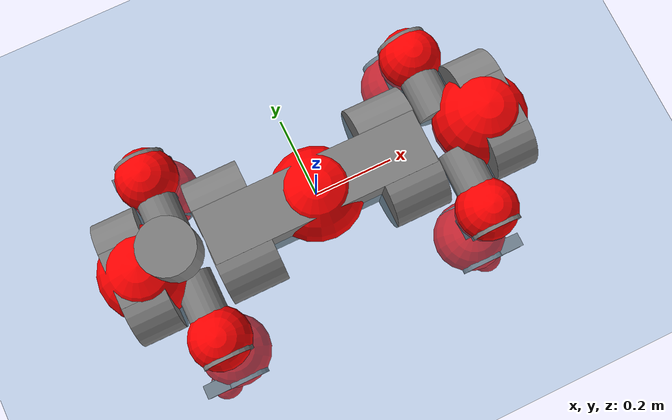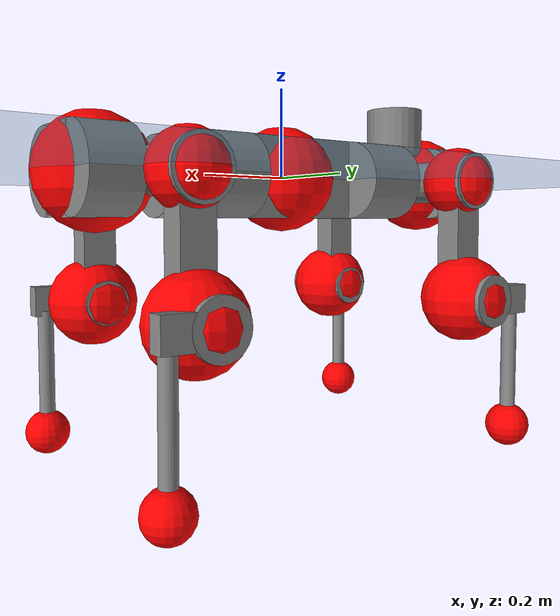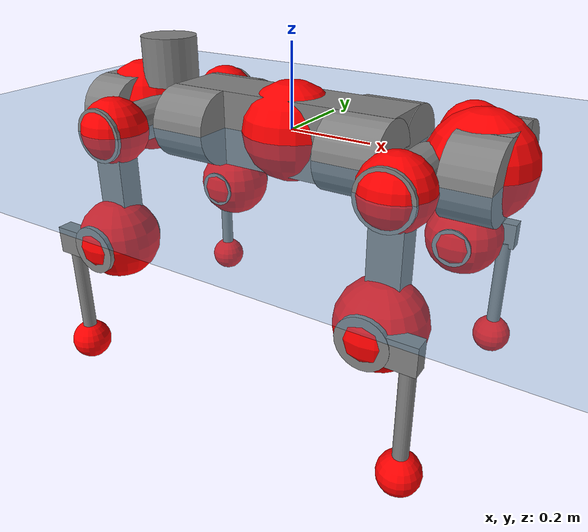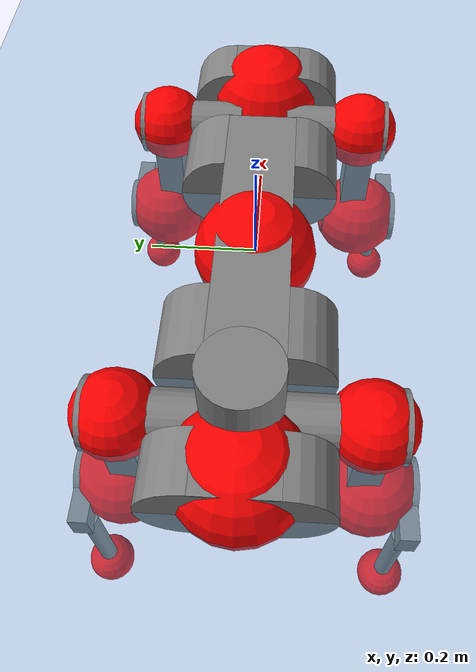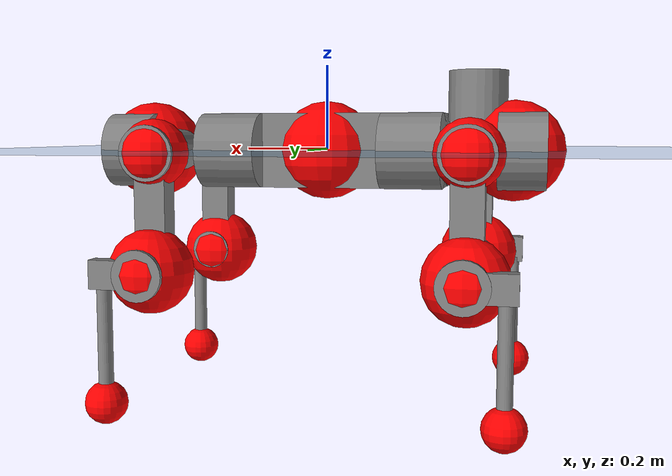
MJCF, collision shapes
<mujoco model="anymal_c">
  <compiler angle="radian" assetdir="assets" balanceinertia="true" inertiafromgeom="false"/>

  <option timestep="0.005" density="1.2" viscosity="2e-05"/>

  <size nkey="1"/>

  <visual>
    <quality shadowsize="8192"/>
    <map shadowclip="0.5"/>
  </visual>

  <default>
    <default class="/">
      <material specular="0" shininess="0.25"/>
      <geom contype="0" conaffinity="0" group="1" solref="-1000 -80"/>
      <site size="0.01 0.005 0.005" group="5"/>
      <general forcelimited="true" forcerange="-80 80" biastype="affine" gainprm="80" biasprm="0 -80 -2"/>
      <default class="anymal_c">
        <joint armature="0.01" damping="0.01" frictionloss="0.1"/>
        <default class="visual">
          <geom type="mesh" group="2"/>
          <default class="visual_zflip"/>
        </default>
        <default class="collision">
          <geom type="cylinder" group="3"/>
          <default class="foot">
            <geom size="0.03 0 0" type="sphere" condim="6" priority="1" friction="0.8 0.02 0.01" solimp="0.015 1 0.03"/>
          </default>
        </default>
      </default>
      <default class="reward_collision_sphere">
        <geom group="5" rgba="1 0 0 1"/>
      </default>
    </default>
  </default>

  <asset>
    <texture type="skybox" colorspace="auto" name="//unnamed_texture_0" builtin="gradient" rgb1="0.95 0.95 0.95" rgb2="0.95 0.95 0.95" width="100" height="600"/>
    <texture type="2d" colorspace="auto" name="texplane" builtin="checker" rgb1="0.345 0.575 0.748" rgb2="0.345 0.575 0.748" markrgb="1 1 1" width="512" height="512"/>
    <texture type="2d" colorspace="linear" name="base" file="base.png"/>
    <texture type="2d" colorspace="linear" name="top_shell" file="top_shell.png"/>
    <texture type="2d" colorspace="linear" name="bottom_shell" file="bottom_shell.png"/>
    <texture type="2d" colorspace="linear" name="remote" file="remote.png"/>
    <texture type="2d" colorspace="linear" name="hatch" file="hatch.png"/>
    <texture type="2d" colorspace="linear" name="handle" file="handle.png"/>
    <texture type="2d" colorspace="linear" name="face" file="face.png"/>
    <texture type="2d" colorspace="linear" name="battery" file="battery.png"/>
    <texture type="2d" colorspace="linear" name="lidar_cage" file="lidar_cage.png"/>
    <texture type="2d" colorspace="linear" name="depth_camera" file="depth_camera.png"/>
    <texture type="2d" colorspace="linear" name="wide_angle_camera" file="wide_angle_camera.png"/>
    <texture type="2d" colorspace="linear" name="lidar" file="lidar.png"/>
    <texture type="2d" colorspace="linear" name="drive" file="drive.png"/>
    <texture type="2d" colorspace="linear" name="hip_l" file="hip_l.png"/>
    <texture type="2d" colorspace="linear" name="shank_l" file="shank_l.png"/>
    <texture type="2d" colorspace="linear" name="foot" file="foot.png"/>
    <texture type="2d" colorspace="linear" name="thigh" file="thigh.png"/>
    <texture type="2d" colorspace="linear" name="shank_r" file="shank_r.png"/>
    <texture type="2d" colorspace="linear" name="hip_r" file="hip_r.png"/>
    <material name="MatPlane" class="/" texture="texplane" texuniform="true" texrepeat="2 2" specular="0.9" shininess="0.5"/>
    <material name="black_plastic" class="/" rgba="0.007 0.007 0.007 1"/>
    <material name="green" class="/" rgba="0.052 0.178 0.033 1"/>
    <material name="red" class="/" rgba="0.178 0.006 0.005 1"/>
    <material name="yellow" class="/" rgba="0.178 0.119 0.006 1"/>
    <material name="lwl" class="/" rgba="0.8 0.8 0.8 1"/>
    <material name="base" class="/" texture="base"/>
    <material name="top_shell" class="/" texture="top_shell"/>
    <material name="bottom_shell" class="/" texture="bottom_shell"/>
    <material name="hip_l" class="/" texture="hip_l"/>
    <material name="thigh" class="/" texture="thigh"/>
    <material name="shank_l" class="/" texture="shank_l"/>
    <material name="foot" class="/" texture="foot"/>
    <material name="hip_r" class="/" texture="hip_r"/>
    <material name="shank" class="/" texture="shank_r"/>
    <material name="hatch" class="/" texture="hatch"/>
    <material name="remote" class="/" texture="remote"/>
    <material name="handle" class="/" texture="handle"/>
    <material name="face" class="/" texture="face"/>
    <material name="depth_camera" class="/" texture="depth_camera"/>
    <material name="wide_angle_camera" class="/" texture="wide_angle_camera"/>
    <material name="battery" class="/" texture="battery"/>
    <material name="lidar_cage" class="/" texture="lidar_cage"/>
    <material name="lidar" class="/" texture="lidar"/>
    <material name="drive" class="/" texture="drive"/>
    <mesh name="base_0" class="/" file="base_0.obj"/>
    <mesh name="base_1" class="/" file="base_1.obj"/>
    <mesh name="base_2" class="/" file="base_2.obj"/>
    <mesh name="base_3" class="/" file="base_3.obj"/>
    <mesh name="base_4" class="/" file="base_4.obj"/>
    <mesh name="base_5" class="/" file="base_5.obj"/>
    <mesh name="top_shell" class="/" file="top_shell.obj"/>
    <mesh name="bottom_shell" class="/" file="bottom_shell.obj"/>
    <mesh name="remote" class="/" file="remote.obj"/>
    <mesh name="handle" class="/" file="handle.obj"/>
    <mesh name="face" class="/" file="face.obj"/>
    <mesh name="wide_angle_camera" class="/" file="wide_angle_camera.obj"/>
    <mesh name="depth_camera" class="/" file="depth_camera.obj"/>
    <mesh name="battery" class="/" file="battery.obj"/>
    <mesh name="lidar_cage" class="/" file="lidar_cage.obj"/>
    <mesh name="lidar" class="/" file="lidar.obj"/>
    <mesh name="drive" class="/" file="drive.obj"/>
    <mesh name="hip_l" class="/" file="hip_l.obj"/>
    <mesh name="thigh" class="/" file="thigh.obj"/>
    <mesh name="shank_l" class="/" file="shank_l.obj"/>
    <mesh name="foot" class="/" file="foot.obj"/>
    <mesh name="hip_r" class="/" file="hip_r.obj"/>
    <mesh name="hatch" class="/" file="hatch.obj"/>
    <mesh name="shank_r" class="/" file="shank_r.obj"/>
  </asset>

  <worldbody>
    <geom name="floor" class="/" size="100 100 0.125" type="plane" group="0" material="MatPlane"/>
    <light name="toplight_shadow" class="/" pos="0 0 5" dir="0.0990148 0.0990148 -0.990148" type="directional" ambient="0.04 0.04 0.04" diffuse="0.55 0.55 0.55" specular="0.12 0.12 0.12"/>
    <light name="toplight_fill" class="/" pos="0 0 5" dir="0.0990148 0.0990148 -0.990148" type="directional" castshadow="false" ambient="0.04 0.04 0.04" diffuse="0.3 0.3 0.3" specular="0.08 0.08 0.08"/>
    <body name="trunk" childclass="anymal_c" pos="-8.16103e-05 0.000982709 -0.00278701" quat="1 -2.15993e-05 0.000297312 -0.000312468">
      <inertial pos="0.00199023 0.00234495 0.0446647" quat="0.499598 0.498465 0.502046 0.499885" mass="18.337" diaginertia="0.610134 0.644517 0.170115"/>
      <joint name="//unnamed_joint_0" type="free" armature="0" damping="0" frictionloss="0"/>
      <geom name="//unnamed_geom_1" class="visual" material="green" mesh="base_0"/>
      <geom name="//unnamed_geom_2" class="visual" material="yellow" mesh="base_1"/>
      <geom name="//unnamed_geom_3" class="visual" material="red" mesh="base_2"/>
      <geom name="//unnamed_geom_4" class="visual" material="black_plastic" mesh="base_3"/>
      <geom name="//unnamed_geom_5" class="visual" material="lwl" mesh="base_4"/>
      <geom name="//unnamed_geom_6" class="visual" material="base" mesh="base_5"/>
      <geom name="trunk_1" class="collision" size="0.283718 0.0684837 0.0880505" type="box"/>
      <geom name="trunk_2" class="collision" size="0.0880505 0.0709296" pos="0.214856 0.0702124 0" quat="0.707107 0 0.707107 0"/>
      <geom name="trunk_3" class="collision" size="0.0880505 0.0709296" pos="-0.214856 0.0702124 0" quat="0.707107 0 0.707107 0"/>
      <geom name="trunk_4" class="collision" size="0.0880505 0.0709296" pos="0.214856 -0.0702124 0" quat="0.707107 0 0.707107 0"/>
      <geom name="trunk_5" class="collision" size="0.0880505 0.0709296" pos="-0.214856 -0.0702124 0" quat="0.707107 0 0.707107 0"/>
      <geom name="//unnamed_geom_12" class="visual" material="top_shell" mesh="top_shell"/>
      <geom name="//unnamed_geom_13" class="visual" material="bottom_shell" mesh="bottom_shell"/>
      <geom name="//unnamed_geom_14" class="visual" material="remote" mesh="remote"/>
      <geom name="//unnamed_geom_15" class="visual" material="handle" mesh="handle"/>
      <geom name="//unnamed_geom_16" class="visual" pos="0.409461 0 0" quat="1 0 0 0" material="face" mesh="face"/>
      <geom name="trunk_6" class="collision" size="0.0538087 0.0684837 0.0880505" pos="0.463792 0 0" type="box"/>
      <geom name="//unnamed_geom_18" class="collision" size="0.0880505 0.0538087" pos="0.463792 0.0702124 0" quat="0.707107 0 0.707107 0"/>
      <geom name="//unnamed_geom_19" class="collision" size="0.0880505 0.0538087" pos="0.463792 -0.0702124 0" quat="0.707107 0 0.707107 0"/>
      <geom name="//unnamed_geom_20" class="visual" pos="0.456036 0 -0.0272368" quat="0.965926 0 0.258819 0" material="depth_camera" mesh="depth_camera"/>
      <geom name="//unnamed_geom_21" class="visual" pos="0.506763 0 0.0141338" material="wide_angle_camera" mesh="wide_angle_camera"/>
      <geom name="//unnamed_geom_22" class="visual_zflip" pos="-0.409461 0 0" quat="0 0 0 1" material="face" mesh="face"/>
      <geom name="trunk_7" class="collision" size="0.0538087 0.0684837 0.0880505" pos="-0.463792 0 0" quat="0 0 0 1" type="box"/>
      <geom name="//unnamed_geom_24" class="collision" size="0.0880505 0.0538087" pos="-0.463792 -0.0702124 0" quat="0 -0.707107 0 0.707107"/>
      <geom name="//unnamed_geom_25" class="collision" size="0.0880505 0.0538087" pos="-0.463792 0.0702124 0" quat="0 -0.707107 0 0.707107"/>
      <geom name="//unnamed_geom_26" class="visual" pos="-0.456036 0 -0.0272368" quat="0 -0.258819 0 0.965926" material="depth_camera" mesh="depth_camera"/>
      <geom name="//unnamed_geom_27" class="visual_zflip" pos="-0.506763 0 0.0141338" quat="0 0 0 1" material="wide_angle_camera" mesh="wide_angle_camera"/>
      <geom name="//unnamed_geom_28" class="visual" material="battery" mesh="battery"/>
      <geom name="//unnamed_geom_29" class="visual" pos="0 0.0768895 0.0277594" quat="0.683013 -0.183013 0.183013 0.683013" material="depth_camera" mesh="depth_camera"/>
      <geom name="//unnamed_geom_30" class="visual" pos="0 -0.0768895 0.0277594" quat="0.683013 0.183013 0.183013 -0.683013" material="depth_camera" mesh="depth_camera"/>
      <geom name="//unnamed_geom_31" class="visual" pos="-0.359575 0 0.0693944" quat="1 0 0 0" material="lidar_cage" mesh="lidar_cage"/>
      <geom name="trunk_8" class="collision" size="0.0684837 0.0587003" pos="-0.359575 0 0.126043"/>
      <geom name="//unnamed_geom_33" class="visual" pos="-0.359575 5.96831e-06 0.134257" quat="0.707107 0 0 -0.707107" material="lidar" mesh="lidar"/>
      <geom name="//unnamed_geom_34" class="visual" pos="0.296254 0.104295 1.0159e-09" quat="0.258819 0.965926 0 0" material="drive" mesh="drive"/>
      <geom name="//unnamed_geom_35" class="visual" pos="0.296254 -0.104295 -1.0159e-09" quat="0.258819 -0.965926 0 0" material="drive" mesh="drive"/>
      <geom name="//unnamed_geom_36" class="visual" pos="-0.296254 0.104295 -1.0159e-09" quat="0 0 0.965926 -0.258819" material="drive" mesh="drive"/>
      <geom name="//unnamed_geom_37" class="visual" pos="-0.296254 -0.104295 1.0159e-09" quat="0 0 -0.965926 -0.258819" material="drive" mesh="drive"/>
      <geom name="//unnamed_geom_38" class="visual" pos="0.11459 0 0.0689223" quat="1 0 0 0" material="hatch" mesh="hatch"/>
      <geom name="//unnamed_geom_39" class="reward_collision_sphere" size="0.117401"/>
      <geom name="//unnamed_geom_40" class="reward_collision_sphere" size="0.117401" pos="0.444529 0 0"/>
      <geom name="//unnamed_geom_41" class="reward_collision_sphere" size="0.117401" pos="-0.444529 0 0"/>
      <site name="imu" pos="0.250241 0.0224997 0.049338" size="0.00978339"/>
      <camera name="track" pos="0 -2.00607 0" quat="0.707107 0.707107 0 0" mode="trackcom"/>
      <camera name="ego_camera" pos="0.444529 0 -0.0377657" quat="-0.5 -0.5 0.5 0.5"/>
      <body name="LF_HIP" pos="0.296663 0.103453 0.00154766" quat="0.258554 0.965996 -0.000695377 0.00119641">
        <inertial pos="0.0572742 -0.0174256 -0.00745923" quat="-0.127652 0.707873 -0.137781 0.680909" mass="2.54449" diaginertia="0.00556799 0.00523465 0.00247549"/>
        <joint name="LF_HAA" pos="0 0 0" axis="0.999999 -0.000312519 -0.0013069" range="-0.714296 0.496342" armature="0.00976547" damping="0.0248607" frictionloss="0.0998067"/>
        <geom name="//unnamed_geom_42" class="visual" pos="0 5.97605e-05 -9.81562e-06" quat="0.258819 -0.965926 0 0" material="hip_l" mesh="hip_l"/>
        <geom name="//unnamed_geom_43" class="visual" pos="0.0591717 -0.0718783 -0.0410633" quat="0.183013 -0.683013 0.683013 0.183013" material="drive" mesh="drive"/>
        <geom name="//unnamed_geom_44" class="collision" size="0.048917 0.0684837" pos="0.0591717 -0.0119961 -0.0065193" quat="-0.353553 -0.612372 0.612372 -0.353553"/>
        <body name="LF_THIGH" pos="0.0624092 -0.0743315 -0.0362131" quat="0.183295 -0.683488 0.682397 0.183249">
          <inertial pos="0.0330465 -0.00259813 -0.232956" quat="0.993162 -0.00567462 -0.0803198 0.08453" mass="2.82642" diaginertia="0.028585 0.0290997 0.00303233"/>
          <joint name="LF_HFE" pos="0 0 0" axis="0.999966 -0.00750338 0.00340395" stiffness="0.00261716" range="-3.09444 3.1314" armature="0.00857084" damping="0.00897993" frictionloss="0.0866956"/>
          <geom name="//unnamed_geom_45" class="visual" pos="-0.00030225 -4.76275e-07 0" quat="0.707107 0 0 -0.707107" material="thigh" mesh="thigh"/>
          <geom name="//unnamed_geom_46" class="collision" size="0.063592 0.0391336" pos="0.0395137 0 0" quat="0.5 0.5 -0.5 -0.5"/>
          <geom name="//unnamed_geom_47" class="collision" size="0.0366877 0.0293502 0.138253" pos="0.0296353 0 -0.13342" quat="0.707107 0 0 -0.707107" type="box"/>
          <geom name="//unnamed_geom_48" class="visual" pos="0.0990806 0 -0.26908" quat="1 0 0 0" material="drive" mesh="drive"/>
          <geom name="//unnamed_geom_49" class="collision" size="0.048917 0.0684837" pos="0.0299316 0 -0.26908" quat="0.707107 0 0.707107 0"/>
          <geom name="//unnamed_geom_50" class="reward_collision_sphere" size="0.0782671" pos="0.0246961 0 0"/>
          <body name="LF_SHANK" pos="0.0991513 -0.00122119 -0.268962" quat="0.999999 -0.00117946 0.000792862 5.80419e-05">
            <inertial pos="0.00354353 -0.0617466 -0.0735923" quat="0.993904 -0.107419 0.00809625 -0.023453" mass="0.549875" diaginertia="0.00919008 0.00965235 0.000856354"/>
            <joint name="LF_KFE" pos="0 0 0" axis="0.999927 0.00764835 -0.00931173" stiffness="0.0079961" range="-3.15958 3.1192" armature="0.0110502" damping="0" frictionloss="0.111641"/>
            <geom name="//unnamed_geom_51" class="visual" pos="-9.85571e-05 -0.000525511 0" quat="0.707107 0 0 -0.707107" material="shank_l" mesh="shank_l"/>
            <geom name="LF_kfe_act" class="collision" size="0.0587003 0.0195668" pos="0.0197568 0 0" quat="0.5 0.5 -0.5 -0.5"/>
            <geom name="//unnamed_geom_53" class="collision" size="0.0562535 0.0330189 0.0185884" pos="0.0197568 -0.0576734 0" quat="0.5 0.5 -0.5 -0.5" type="box"/>
            <geom name="//unnamed_geom_54" class="visual" pos="0.0128914 -0.0883862 -0.319092" quat="0.382683 0 0 -0.92388" material="foot" mesh="foot"/>
            <geom name="LF_calf" class="collision" size="0.0171209 0.138192" pos="0.0128913 -0.0882168 -0.159546" quat="0.707107 0 0 -0.707107"/>
            <geom name="LF_foot" class="foot" size="0.0264289" pos="0.0128913 -0.0882168 -0.297848" quat="0.707107 0 0 -0.707107"/>
            <geom name="//unnamed_geom_57" class="reward_collision_sphere" size="0.0978339" pos="-0.0493921 0 0"/>
            <geom name="//unnamed_geom_58" class="reward_collision_sphere" size="0.048917" pos="0.0128913 -0.0882168 -0.297848"/>
            <site name="LF_foot" class="foot" pos="0.0128913 -0.0882168 -0.297848" quat="0.707107 0 0 -0.707107" size="0.00978339"/>
          </body>
        </body>
      </body>
      <body name="RF_HIP" pos="0.296952 -0.10351 -0.00066869" quat="0.259775 -0.965669 -0.000435805 -0.000413074">
        <inertial pos="0.0589644 0.0142516 -0.00836883" quat="0.135345 0.674242 0.123108 0.715489" mass="2.59756" diaginertia="0.00516713 0.00482764 0.00230232"/>
        <joint name="RF_HAA" pos="0 0 0" axis="0.999923 0.00745078 0.00995154" range="-0.450147 0.717633" armature="0.0106318" damping="0.00530035" frictionloss="0.089776"/>
        <geom name="//unnamed_geom_59" class="visual" pos="0 -5.976e-05 -9.81559e-06" quat="0.258819 0.965926 0 0" material="hip_r" mesh="hip_r"/>
        <geom name="//unnamed_geom_60" class="visual" pos="0.0591717 0.0718783 -0.0410633" quat="0.183013 0.683013 0.683013 -0.183013" material="drive" mesh="drive"/>
        <geom name="//unnamed_geom_61" class="collision" size="0.048917 0.0684837" pos="0.0591717 0.0119961 -0.0065193" quat="-0.353553 0.612372 0.612372 0.353553"/>
        <body name="RF_THIGH" pos="0.0598831 0.072672 -0.0394262" quat="0.183141 0.682802 0.682935 -0.183958">
          <inertial pos="0.0333858 -0.00221503 -0.230865" quat="0.992315 -0.0120092 -0.0744694 0.0980883" mass="2.86894" diaginertia="0.0277354 0.0285004 0.00309572"/>
          <joint name="RF_HFE" pos="0 0 0" axis="0.999934 -0.00196383 -0.0113007" range="-3.13956 3.17876" armature="0.00989078" damping="0.00724354" frictionloss="0.111154"/>
          <geom name="//unnamed_geom_62" class="visual" pos="-0.00030225 -4.76275e-07 0" quat="0.707107 0 0 -0.707107" material="thigh" mesh="thigh"/>
          <geom name="//unnamed_geom_63" class="collision" size="0.063592 0.0391336" pos="0.0395137 0 0" quat="0.5 0.5 0.5 0.5"/>
          <geom name="//unnamed_geom_64" class="collision" size="0.0366877 0.0293502 0.138253" pos="0.0296353 0 -0.13342" quat="0.707107 0 0 0.707107" type="box"/>
          <geom name="//unnamed_geom_65" class="visual" pos="0.0990806 0 -0.26908" quat="1 0 0 0" material="drive" mesh="drive"/>
          <geom name="//unnamed_geom_66" class="collision" size="0.048917 0.0684837" pos="0.0299316 0 -0.26908" quat="0.707107 0 0.707107 0"/>
          <geom name="//unnamed_geom_67" class="reward_collision_sphere" size="0.0782671" pos="0.0246961 0 0"/>
          <body name="RF_SHANK" pos="0.0965336 -0.00188173 -0.271464" quat="1 -2.87979e-05 -2.78205e-06 2.60363e-05">
            <inertial pos="0.00519132 0.0604461 -0.0762103" quat="0.992999 0.114052 -0.00414468 0.0304685" mass="0.555876" diaginertia="0.0095426 0.00936626 0.000811781"/>
            <joint name="RF_KFE" pos="0 0 0" axis="1 0.000188549 0.000504387" range="-3.15209 3.187" armature="0.00873879" damping="0.0198583" frictionloss="0.085192"/>
            <geom name="//unnamed_geom_68" class="visual" pos="-9.85565e-05 0.00052551 0" quat="0.707107 0 0 0.707107" material="shank" mesh="shank_r"/>
            <geom name="RF_kfe_act" class="collision" size="0.0587003 0.0195668" pos="0.0197568 0 0" quat="0.5 0.5 0.5 0.5"/>
            <geom name="//unnamed_geom_70" class="collision" size="0.0562535 0.0330189 0.0185884" pos="0.0197568 0.0576734 0" quat="0.5 0.5 0.5 0.5" type="box"/>
            <geom name="//unnamed_geom_71" class="visual" pos="0.0128913 0.0883862 -0.319092" quat="0.382683 0 0 0.92388" material="foot" mesh="foot"/>
            <geom name="RF_calf" class="collision" size="0.0171209 0.138192" pos="0.0128913 0.0882168 -0.159546" quat="0.707107 0 0 0.707107"/>
            <geom name="RF_foot" class="foot" size="0.0244169" pos="0.0128913 0.0882168 -0.297848" quat="0.707107 0 0 0.707107"/>
            <geom name="//unnamed_geom_74" class="reward_collision_sphere" size="0.0978339" pos="-0.0493921 0 0"/>
            <geom name="//unnamed_geom_75" class="reward_collision_sphere" size="0.048917" pos="0.0128913 0.0882168 -0.297848"/>
            <site name="RF_foot" class="foot" pos="0.0128913 0.0882168 -0.297848" quat="0.707107 0 0 0.707107" size="0.00978339"/>
          </body>
        </body>
      </body>
      <body name="LH_HIP" pos="-0.295958 0.104141 -0.00163177" quat="-0.000493857 0.000160869 0.965937 -0.258776">
        <inertial pos="0.0586143 0.0157511 -0.0102109" quat="0.136578 0.679086 0.128887 0.709632" mass="2.65661" diaginertia="0.00551629 0.00509673 0.00252999"/>
        <joint name="LH_HAA" pos="0 0 0" axis="0.999997 0.00168599 0.00193017" stiffness="0.00853992" range="-0.493275 0.668131" armature="0.00894715" damping="0.000222853" frictionloss="0.104027"/>
        <geom name="//unnamed_geom_76" class="visual" pos="0 -5.976e-05 -9.81559e-06" quat="-0.258819 -0.965926 0 0" material="hip_r" mesh="hip_r"/>
        <geom name="//unnamed_geom_77" class="visual" pos="0.0591717 0.0718783 -0.0410633" quat="0.183013 0.683013 0.683013 -0.183013" material="drive" mesh="drive"/>
        <geom name="//unnamed_geom_78" class="collision" size="0.048917 0.0684837" pos="0.0591717 0.0119961 -0.0065193" quat="-0.353553 0.612372 0.612372 0.353553"/>
        <body name="LH_THIGH" pos="0.0585819 0.0713523 -0.0388161" quat="0.182824 0.683056 0.683058 -0.182869">
          <inertial pos="0.0301977 -0.000269946 -0.231407" quat="0.991471 -0.0110757 -0.0879563 0.0955266" mass="2.95164" diaginertia="0.0286727 0.0310689 0.00330818"/>
          <joint name="LH_HFE" pos="0 0 0" axis="0.999932 0.00583817 -0.0100703" stiffness="0.00789467" range="-3.1627 3.11916" armature="0.0108036" damping="0" frictionloss="0.0977308"/>
          <geom name="//unnamed_geom_79" class="visual" pos="-0.00030225 -4.76275e-07 0" quat="0.707107 0 0 -0.707107" material="thigh" mesh="thigh"/>
          <geom name="//unnamed_geom_80" class="collision" size="0.063592 0.0391336" pos="0.0395137 0 0" quat="0.5 0.5 -0.5 -0.5"/>
          <geom name="//unnamed_geom_81" class="collision" size="0.0366877 0.0293502 0.138253" pos="0.0296353 0 -0.13342" quat="0.707107 0 0 -0.707107" type="box"/>
          <geom name="//unnamed_geom_82" class="visual" pos="0.0990806 0 -0.26908" quat="1 0 0 0" material="drive" mesh="drive"/>
          <geom name="//unnamed_geom_83" class="collision" size="0.048917 0.0684837" pos="0.0299316 0 -0.26908" quat="0.707107 0 0.707107 0"/>
          <geom name="//unnamed_geom_84" class="reward_collision_sphere" size="0.0782671" pos="0.0246961 0 0"/>
          <body name="LH_SHANK" pos="0.0985568 -0.00154947 -0.269811" quat="1 -3.72012e-06 0.000111448 5.80451e-05">
            <inertial pos="0.00307153 0.061576 -0.0771338" quat="0.991382 0.126417 -0.0047555 0.034024" mass="0.566724" diaginertia="0.0094755 0.00951259 0.00086151"/>
            <joint name="LH_KFE" pos="0 0 0" axis="0.999994 -0.00171386 0.00295521" range="-3.14927 3.19414" armature="0.0110571" damping="0" frictionloss="0.0998282"/>
            <geom name="//unnamed_geom_85" class="visual" pos="-9.85565e-05 0.00052551 0" quat="-0.707107 0 0 -0.707107" material="shank" mesh="shank_r"/>
            <geom name="LH_kfe_act" class="collision" size="0.0587003 0.0195668" pos="0.0197568 0 0" quat="0.5 0.5 -0.5 -0.5"/>
            <geom name="//unnamed_geom_87" class="collision" size="0.0562535 0.0330189 0.0185884" pos="0.0197568 0.0576734 0" quat="0.5 0.5 -0.5 -0.5" type="box"/>
            <geom name="//unnamed_geom_88" class="visual" pos="0.0128913 0.0883862 -0.319092" quat="-0.382683 0 0 -0.92388" material="foot" mesh="foot"/>
            <geom name="LH_calf" class="collision" size="0.0171209 0.138192" pos="0.0128913 0.0882168 -0.159546" quat="0.707107 0 0 -0.707107"/>
            <geom name="LH_foot" class="foot" size="0.0290345" pos="0.0128913 0.0882168 -0.297848" quat="0.707107 0 0 -0.707107"/>
            <geom name="//unnamed_geom_91" class="reward_collision_sphere" size="0.0978339" pos="-0.0493921 0 0"/>
            <geom name="//unnamed_geom_92" class="reward_collision_sphere" size="0.048917" pos="0.0128913 0.0882168 -0.297848"/>
            <site name="LH_foot" class="foot" pos="0.0128913 0.0882168 -0.297848" quat="0.707107 0 0 -0.707107" size="0.00978339"/>
          </body>
        </body>
      </body>
      <body name="RH_HIP" pos="-0.29412 -0.107012 0.00034159" quat="-0.000232349 7.01869e-05 -0.965899 -0.258918">
        <inertial pos="0.0563231 -0.0131196 -0.00837276" quat="-0.122123 0.717924 -0.133417 0.672214" mass="2.60827" diaginertia="0.00556874 0.00507516 0.00250807"/>
        <joint name="RH_HAA" pos="0 0 0" axis="1 -0.000762044 -0.000485288" stiffness="0.00839223" range="-0.678349 0.497071" armature="0.00830863" damping="0.0120891" frictionloss="0.100651"/>
        <geom name="//unnamed_geom_93" class="visual" pos="0 5.97605e-05 -9.81562e-06" quat="-0.258819 0.965926 0 0" material="hip_l" mesh="hip_l"/>
        <geom name="//unnamed_geom_94" class="visual" pos="0.0591717 -0.0718783 -0.0410633" quat="-0.183013 0.683013 -0.683013 -0.183013" material="drive" mesh="drive"/>
        <geom name="//unnamed_geom_95" class="collision" size="0.048917 0.0684837" pos="0.0591717 -0.0119961 -0.0065193" quat="0.353553 0.612372 -0.612372 0.353553"/>
        <body name="RH_THIGH" pos="0.057634 -0.073601 -0.0401178" quat="-0.18299 0.683002 -0.683058 -0.18291">
          <inertial pos="0.0312067 0.000410676 -0.231799" quat="0.993184 -0.00506761 -0.0806938 0.0839548" mass="2.82393" diaginertia="0.0284211 0.0314139 0.00316565"/>
          <joint name="RH_HFE" pos="0 0 0" axis="0.999987 -0.00350097 -0.00362686" stiffness="0.00941845" range="-3.14381 3.17395" armature="0.0101471" damping="0.00446622" frictionloss="0.100931"/>
          <geom name="//unnamed_geom_96" class="visual" pos="-0.00030225 -4.76275e-07 0" quat="0.707107 0 0 -0.707107" material="thigh" mesh="thigh"/>
          <geom name="//unnamed_geom_97" class="collision" size="0.063592 0.0391336" pos="0.0395137 0 0" quat="0.5 0.5 0.5 0.5"/>
          <geom name="//unnamed_geom_98" class="collision" size="0.0366877 0.0293502 0.138253" pos="0.0296353 0 -0.13342" quat="0.707107 0 0 0.707107" type="box"/>
          <geom name="//unnamed_geom_99" class="visual" pos="0.0990806 0 -0.26908" quat="1 0 0 0" material="drive" mesh="drive"/>
          <geom name="//unnamed_geom_100" class="collision" size="0.048917 0.0684837" pos="0.0299316 0 -0.26908" quat="0.707107 0 0.707107 0"/>
          <geom name="//unnamed_geom_101" class="reward_collision_sphere" size="0.0782671" pos="0.0246961 0 0"/>
          <body name="RH_SHANK" pos="0.0993507 -0.00103547 -0.265099" quat="1 -4.31232e-05 0.000225549 3.41832e-05">
            <inertial pos="0.0031198 -0.0615172 -0.0754618" quat="0.992421 -0.120224 0.0120423 -0.0224136" mass="0.554733" diaginertia="0.00980326 0.00924884 0.00085468"/>
            <joint name="RH_KFE" pos="0 0 0" axis="0.999977 0.0037875 0.00566211" stiffness="4.69044e-05" range="-3.15678 3.13479" armature="0.00891438" damping="0.0157919" frictionloss="0.0899151"/>
            <geom name="//unnamed_geom_102" class="visual" pos="-9.85571e-05 -0.000525511 0" quat="0.707107 0 0 -0.707107" material="shank_l" mesh="shank_l"/>
            <geom name="RH_kfe_act" class="collision" size="0.0587003 0.0195668" pos="0.0197568 0 0" quat="0.5 0.5 0.5 0.5"/>
            <geom name="//unnamed_geom_104" class="collision" size="0.0562535 0.0330189 0.0185884" pos="0.0197568 -0.0576734 0" quat="0.5 0.5 0.5 0.5" type="box"/>
            <geom name="//unnamed_geom_105" class="visual" pos="0.0128914 -0.0883862 -0.319092" quat="0.382683 0 0 -0.92388" material="foot" mesh="foot"/>
            <geom name="RH_calf" class="collision" size="0.0171209 0.138192" pos="0.0128913 -0.0882168 -0.159546" quat="0.707107 0 0 0.707107"/>
            <geom name="RH_foot" class="foot" size="0.0284447" pos="0.0128913 -0.0882168 -0.297848" quat="0.707107 0 0 0.707107"/>
            <geom name="//unnamed_geom_108" class="reward_collision_sphere" size="0.0978339" pos="-0.0493921 0 0"/>
            <geom name="//unnamed_geom_109" class="reward_collision_sphere" size="0.048917" pos="0.0128913 -0.0882168 -0.297848"/>
            <site name="RH_foot" class="foot" pos="0.0128913 -0.0882168 -0.297848" quat="0.707107 0 0 0.707107" size="0.00978339"/>
          </body>
        </body>
      </body>
    </body>
  </worldbody>

  <contact>
    <pair class="/" geom1="floor" geom2="LF_foot" name="//unnamed_contact_0"/>
    <pair class="/" geom1="floor" geom2="RF_foot" name="//unnamed_contact_1"/>
    <pair class="/" geom1="floor" geom2="LH_foot" name="//unnamed_contact_2"/>
    <pair class="/" geom1="floor" geom2="RH_foot" name="//unnamed_contact_3"/>
  </contact>

  <actuator>
    <general name="LF_HAA" class="/" joint="LF_HAA" forcerange="-78.9228 78.9228" gainprm="83.689" biasprm="0 -83.689 -1.97521"/>
    <general name="LF_HFE" class="/" joint="LF_HFE" forcerange="-69.9153 69.9153" gainprm="83.689" biasprm="0 -83.689 -1.97521"/>
    <general name="LF_KFE" class="/" joint="LF_KFE" forcerange="-80.382 80.382" gainprm="83.689" biasprm="0 -83.689 -1.97521"/>
    <general name="RF_HAA" class="/" joint="RF_HAA" forcerange="-80.3595 80.3595" gainprm="83.689" biasprm="0 -83.689 -1.97521"/>
    <general name="RF_HFE" class="/" joint="RF_HFE" forcerange="-88.6707 88.6707" gainprm="83.689" biasprm="0 -83.689 -1.97521"/>
    <general name="RF_KFE" class="/" joint="RF_KFE" forcerange="-77.3963 77.3963" gainprm="83.689" biasprm="0 -83.689 -1.97521"/>
    <general name="LH_HAA" class="/" joint="LH_HAA" forcerange="-80.0245 80.0245" gainprm="83.689" biasprm="0 -83.689 -1.97521"/>
    <general name="LH_HFE" class="/" joint="LH_HFE" forcerange="-70.9098 70.9098" gainprm="83.689" biasprm="0 -83.689 -1.97521"/>
    <general name="LH_KFE" class="/" joint="LH_KFE" forcerange="-76.5544 76.5544" gainprm="83.689" biasprm="0 -83.689 -1.97521"/>
    <general name="RH_HAA" class="/" joint="RH_HAA" forcerange="-71.2557 71.2557" gainprm="83.689" biasprm="0 -83.689 -1.97521"/>
    <general name="RH_HFE" class="/" joint="RH_HFE" forcerange="-80.9641 80.9641" gainprm="83.689" biasprm="0 -83.689 -1.97521"/>
    <general name="RH_KFE" class="/" joint="RH_KFE" forcerange="-78.1731 78.1731" gainprm="83.689" biasprm="0 -83.689 -1.97521"/>
  </actuator>

  <sensor>
    <gyro site="imu" name="imu_angular_velocity"/>
    <velocimeter site="imu" name="imu_linear_velocity"/>
    <framelinvel objtype="site" objname="LF_foot" name="LF_foot_global_linear_velocity"/>
    <framelinvel objtype="site" objname="RF_foot" name="RF_foot_global_linear_velocity"/>
    <framelinvel objtype="site" objname="LH_foot" name="LH_foot_global_linear_velocity"/>
    <framelinvel objtype="site" objname="RH_foot" name="RH_foot_global_linear_velocity"/>
  </sensor>

  <keyframe>
    <key name="home" qpos="0 0 0.55 1 0 0 0 0 0.4 -0.8 0 -0.4 0.8 0 -0.4 0.8 0 0.4 -0.8"/>
  </keyframe>
</mujoco>
